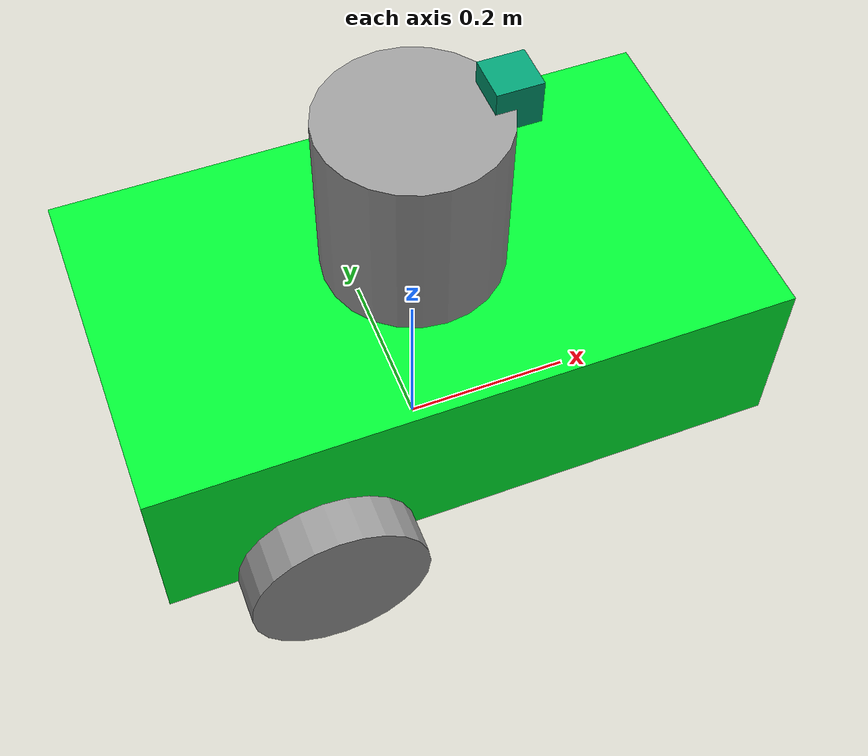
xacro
<?xml version="1.0"?>

<!-- <<<< Base robot structure >>>> -->
<robot name="my_robot" xmlns:xacro="http://www.ros.org/wiki/xacro">

    <!-- Include -->
    <xacro:include filename="common_properties.xacro"/>
    <xacro:include filename="mobile_base.xacro"/>
    <xacro:include filename="mobile_base_gazebo.xacro"/>
    <xacro:include filename="camera.xacro"/>

</robot>

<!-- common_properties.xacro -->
<robot xmlns:xacro="http://www.ros.org/wiki/xacro">
    <!-- Materials -->

    <material name="green">
        <!-- Reg Green Blue Alfa -->
        <color rgba="0.0 1.0 0.2 1.0"/>
    </material>

    <material name="grey">
        <color rgba="0.6 0.6 0.6 1.0"/>
    </material>

    <!-- Intertial Macros -->
     <xacro:macro name="box_intertia" params="m x y z o_xyz o_rpy">
        <inertial>
            <origin xyz="${o_xyz}" rpy="${o_rpy}"/>
            <mass value="${m}"/>
            <inertia ixx="${(m/12)* (y*y + z*z)}" ixy="0.0" ixz="0.0"
                     iyy="${(m/12)* (x*x + z*z)}" iyz="0.0"
                     izz="${(m/12)* (x*x + y*y)}"/>
        </inertial>
     </xacro:macro>

     <xacro:macro name="solid_cilinder_intertia" params="m r h o_xyz o_rpy">
        <inertial>
            <origin xyz="${o_xyz}" rpy="${o_rpy}"/>
            <mass value="${m}"/>
            <inertia ixx="${(m/12)*(3*r*r + h*h)}" ixy="0.0" ixz="0.0"
                     iyy="${(m/12)*(3*r*r + h*h)}" iyz="0.0"
                     izz="${(m*r*r)/2}"/>
        </inertial>
     </xacro:macro>

     <xacro:macro name="solid_sphere_intertia" params="m r o_xyz o_rpy">
        <inertial>
            <origin xyz="${o_xyz}" rpy="${o_rpy}"/>
            <mass value="${m}"/>
            <inertia ixx="${(m*r*r)*2.0/5.0}" ixy="0.0" ixz="0.0"
                     iyy="${(m*r*r)*2.0/5.0}" iyz="0.0"
                     izz="${(m*r*r)*2.0/5.0}"/>
        </inertial>
     </xacro:macro>
</robot>

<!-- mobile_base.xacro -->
<robot xmlns:xacro="http://www.ros.org/wiki/xacro">
    <!-- Mobile part of the robot -->

    <!-- For intertia: https://en.wikipedia.org/wiki/List_of_moments_of_inertia -->

    <!-- Xacro variables -->
    <xacro:property name="base_lenght" value="0.7"/>
    <xacro:property name="base_width" value="0.4"/>
    <xacro:property name="base_height" value="0.2"/>

    <xacro:property name="weel_radius" value="0.1"/>
    <xacro:property name="weel_length" value="0.05"/>

    <xacro:property name="caster_radius" value="${weel_radius / 2.0}"/>

    <!-- Macro for the side wheels -->
    <xacro:macro name="weel_macro" params="dy w_name">
        <link name="${w_name}">
            <visual>
                <geometry>
                    <cylinder radius="${weel_radius}" length="${weel_length}"/>
                </geometry>
                <origin xyz="0.0 ${dy} 0.0" rpy="${pi/2.0} 0.0 0.0"/>
                <material name="grey"/>
            </visual>
            <collision>
                <geometry>
                    <sphere radius="${weel_radius}"/>
                </geometry>
                <origin xyz="0.0 ${dy} 0.0" rpy="${pi/2.0} 0.0 0.0"/>
            </collision>
            <xacro:solid_cilinder_intertia m="${60.0 * weel_radius *weel_length}" r="${weel_radius}"
                    h="${weel_length}" o_xyz="0.0 ${dy} 0.0" o_rpy="${pi/2.0} 0.0 0.0" />
        </link>
    </xacro:macro>

    <!-- <<<< Rigid parts (links) >>>> -->

    <!-- Base link-->
    <link name="body_link">
        <visual>
            <geometry>
                <!-- Medidas em metros -->
                <box size="${base_lenght} ${base_width} ${base_height}"/>
            </geometry>
            <!-- rpy = roll, pitch, yaw-->
            <origin xyz="0.0 0.0 ${base_height / 2.0}" rpy="0.0 0.0 0.0"/>
            <material name="green"/>
        </visual>
        <collision>
            <geometry>
                <box size="${base_lenght} ${base_width} ${base_height}"/>
            </geometry>
            <origin xyz="0.0 0.0 ${base_height / 2.0}" rpy="0.0 0.0 0.0"/>
        </collision>

        <xacro:box_intertia m="5.0" x="${base_lenght}" y="${base_width}" z="${base_height}"
                            o_xyz="0.0 0.0 ${base_height / 2.0}" o_rpy="0.0 0.0 0.0"/>
    </link>

    <link name="second_link">
        <visual>
            <geometry>
                <cylinder radius="0.1" length="0.2"/>
            </geometry>
            <origin xyz="0.0 0.0 0.1" rpy="0.0 0.0 0.0"/>
            <material name="grey"/>
        </visual>
        <collision>
            <geometry>
                <cylinder radius="0.1" length="0.2"/>
            </geometry>
            <origin xyz="0.0 0.0 0.1" rpy="0.0 0.0 0.0"/>
        </collision>

        <xacro:solid_cilinder_intertia m="3.0" r="0.1" h="0.2"
                                       o_xyz="0.0 0.0 0.1" o_rpy="0.0 0.0 0.0" />
    </link>

    <link name="visor_link">
        <visual>
            <geometry>parent_link
                <box size="0.05 0.05 0.05"/>
            </geometry>
            <origin xyz="0.0 0.0 0.0" rpy="0.0 0.0 0.0"/>
        </visual>
        <collision>
            <geometry>
                <box size="0.05 0.05 0.05"/>
            </geometry>
            <origin xyz="0.0 0.0 0.0" rpy="0.0 0.0 0.0"/>
        </collision>
        <xacro:box_intertia m="0.3" x="0.05" y="0.05" z="0.05"
                            o_xyz="0.0 0.0 0.0" o_rpy="0.0 0.0 0.0"/>
    </link>

    <xacro:weel_macro dy="${-weel_length / 2.0}" w_name="right_weel_link"/>
    <xacro:weel_macro dy="${weel_length / 2.0}" w_name="left_weel_link"/>

    <link name="center_weel_link">
        <visual>
            <geometry>
                <sphere radius="${caster_radius}"/>
            </geometry>
            <origin xyz="0.0 0.0 ${-caster_radius}" rpy="0.0 0.0 0.0"/>
            <material name="grey"/>
        </visual>
        <collision>
            <geometry>
                <sphere radius="${caster_radius}"/>
            </geometry>
            <origin xyz="0.0 0.0 ${-caster_radius}" rpy="0.0 0.0 0.0"/>
            <material name="grey"/>
        </collision>
        <xacro:solid_sphere_intertia m="${caster_radius * 4}" r="${caster_radius}"
                             o_xyz="0.0 0.0 ${-caster_radius}" o_rpy="0.0 0.0 0.0"/>
    </link>

    <!-- Base Link-->
    <link name="base_link">
        <origin xyz="0.0 0.0 0.0" rpy="0.0 0.0 0.0"/>
    </link>

    <!-- <<<< Joints >>>> -->
    <joint name="base_body_joint" type="fixed">
        <parent link="base_link"/>
        <child link="body_link"/>
        <origin xyz="0.0 0.0 ${weel_radius}" rpy="0.0 0.0 0.0"/>
    </joint>

    <joint name="body_second_joint" type="revolute">
        <parent link="body_link"/>
        <child link="second_link"/>
        <origin xyz="0.0 0.0 ${base_height}" rpy="0.0 0.0 0.0"/>
        <axis xyz="0.0 0.0 1.0"/>
        <limit lower="-1.0" upper="1.0" effort="0.2" velocity="0.2"/>
    </joint>

    <joint name="joint_name" type="fixed">
        <parent link="second_link"/>
        <child link="visor_link"/>
        <origin xyz="0.1 0.0 0.2" rpy="0.0 0.0 0.0"/>
    </joint>

    <joint name="left_weel_body" type="continuous">
        <parent link="body_link"/>
        <child link="left_weel_link"/>
        <origin xyz="${-base_lenght / 4.0} ${base_width / 2.0} 0.0" rpy="0.0 0.0 0.0"/>
        <axis xyz="0.0 1.0 0.0"/>
    </joint>

    <joint name="right_weel_body" type="continuous">
        <parent link="body_link"/>
        <child link="right_weel_link"/>
        <origin xyz="${-base_lenght / 4.0} ${-base_width / 2.0} 0.0" rpy="0.0 0.0 0.0"/>
        <axis xyz="0.0 1.0 0.0"/>
    </joint>

    <joint name="center_weel_body" type="fixed">
        <parent link="body_link"/>
        <child link="center_weel_link"/>
        <origin xyz="${base_lenght / 3.0} 0.0 0.0" rpy="0.0 0.0 0.0"/>
    </joint>
</robot>

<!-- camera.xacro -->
<robot xmlns:xacro="http://www.ros.org/wiki/xacro">

    <link name="camera_link" />

    <joint name="camera_visor_joint" type="fixed">
        <parent link="visor_link"/>
        <child link="camera_link"/>
        <origin xyz="0.025 0.0 0.0" rpy="0.0 0.0 0.0"/>
    </joint>

    <!-- look at gazebosim/gz-sensors GitHub page for sensors -->
    <gazebo reference="camera_link">
        <sensor name="camera" type="camera">
            <camera name="visor_camera">
                <horizontal_fov>1.3962634</horizontal_fov>
                <image>
                    <width>640</width>
                    <height>480</height>
                    <format>R8G8B8</format>
                </image>
                <clip>
                    <near>0.1</near>
                    <far>15</far>
                </clip>
                <noise>
                    <type>gaussian</type>
                    <mean>0.0</mean>
                    <stddev>0.007</stddev>
                </noise>
                <optical_frame_id>camera_link</optical_frame_id>
                <camera_info_topic>/camera/camera_info</camera_info_topic>
            </camera>
            <always_on>1</always_on>
            <update_rate>20</update_rate>
            <visualize>true</visualize>
            <topic>/camera/image_raw</topic>
        </sensor>
    </gazebo>
</robot>
